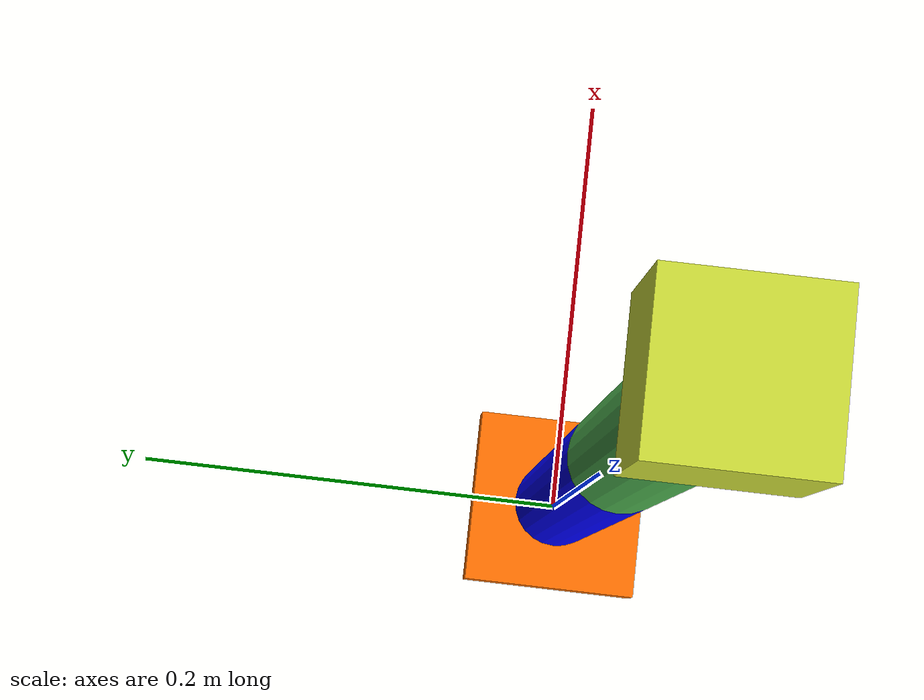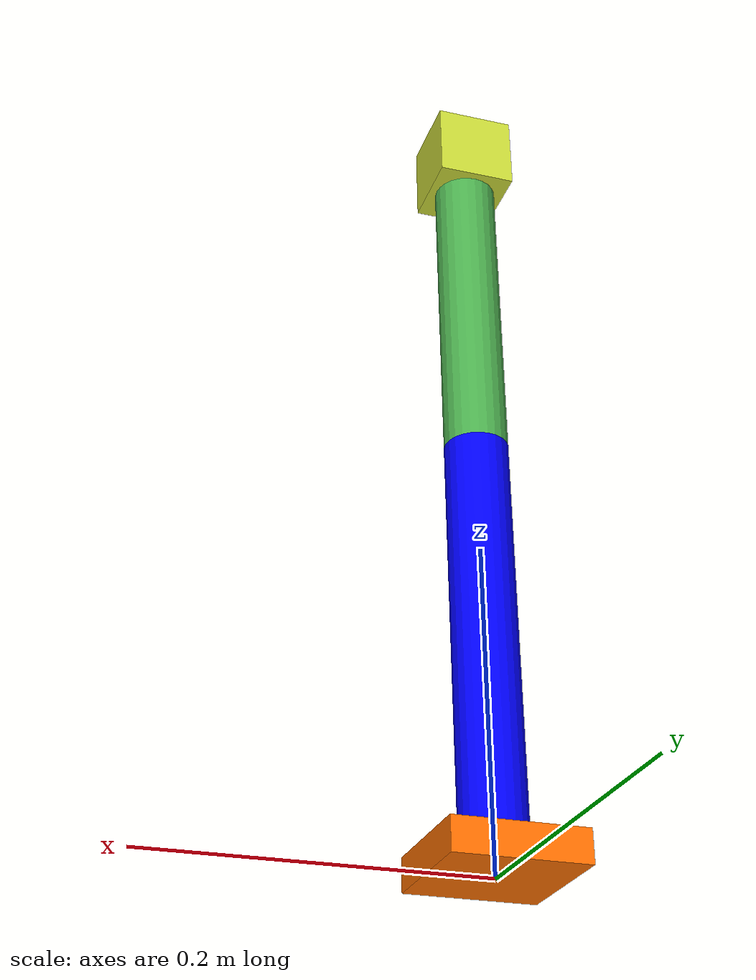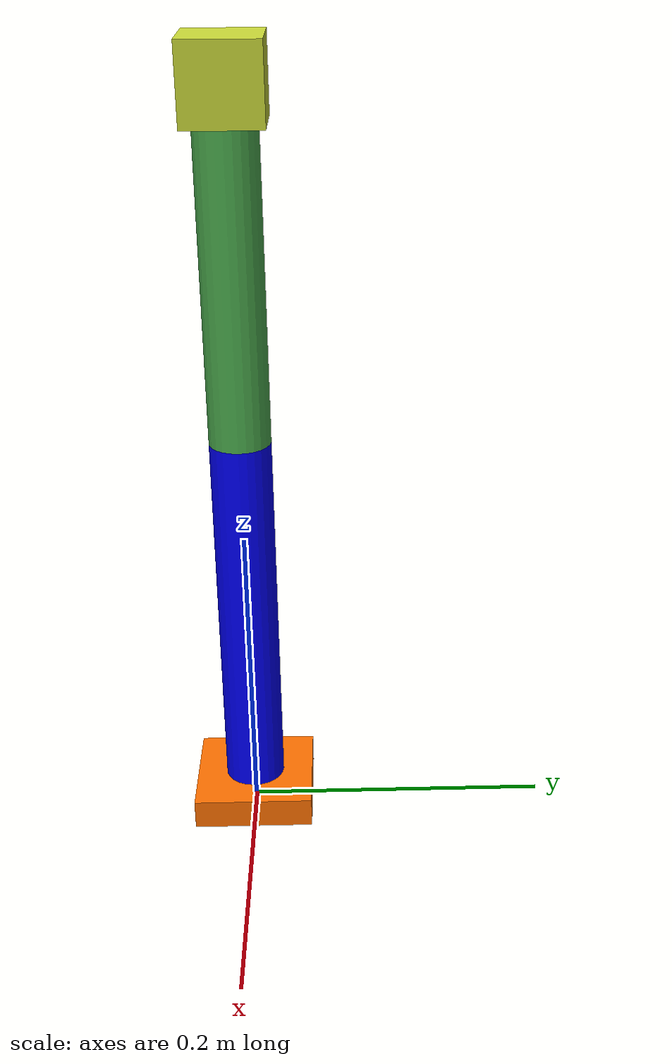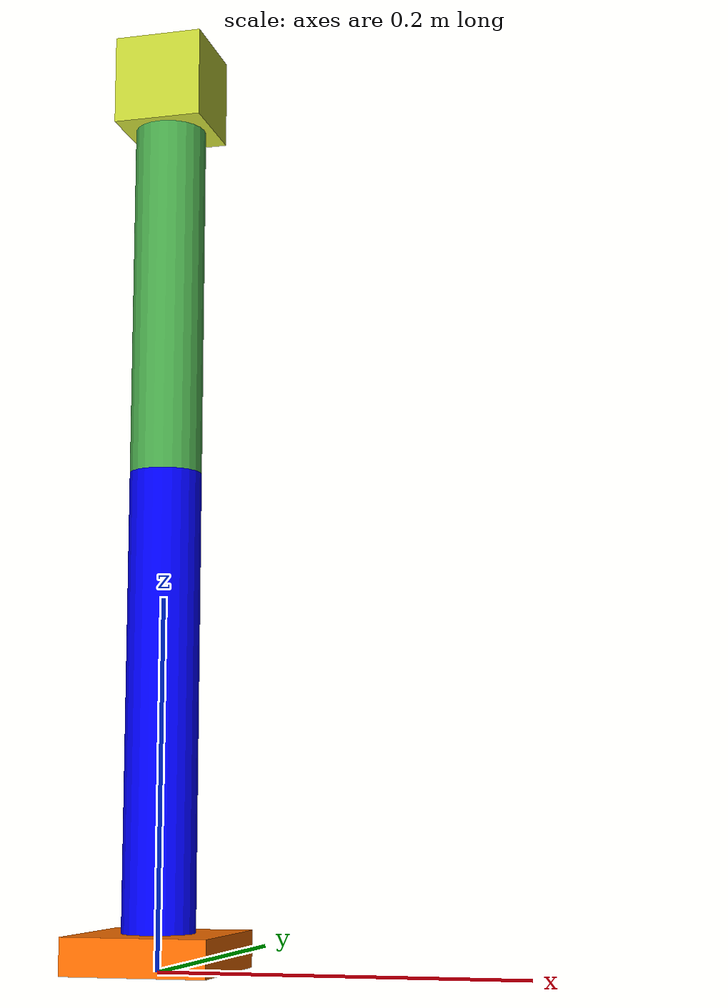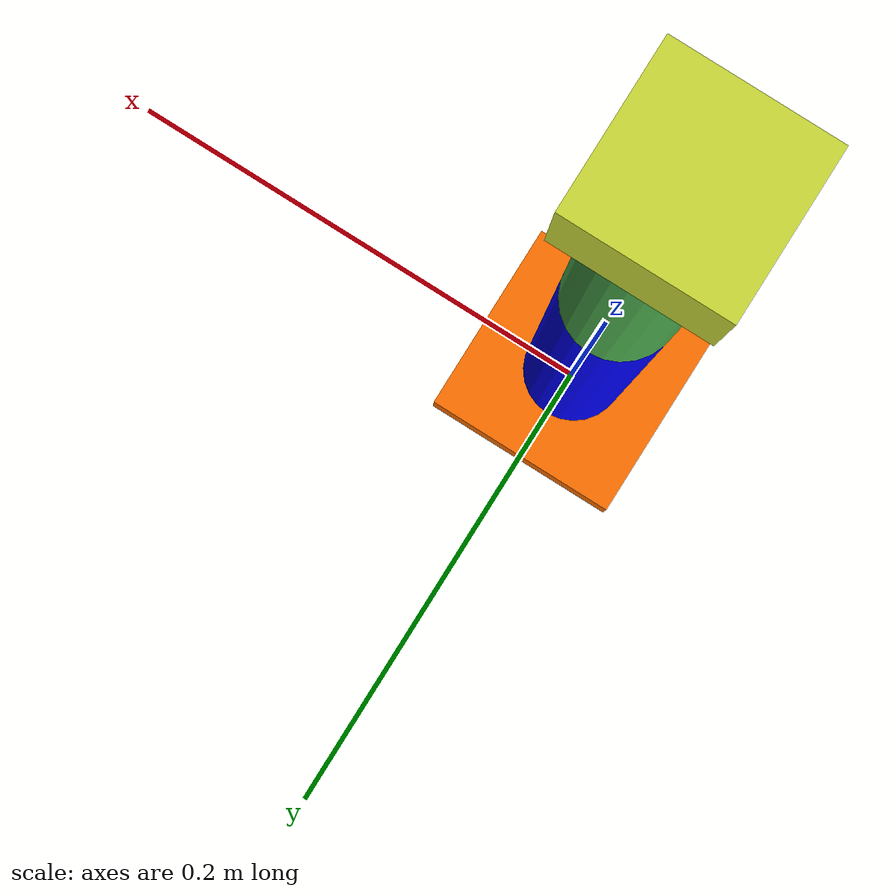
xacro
<?xml version="1.0"?>
<robot xmlns:xacro="http://www.ros.org/wiki/xacro">

  <!-- PROPERTIES -->
  <xacro:property name="arm_base_length" value="0.08"/>
  <xacro:property name="arm_base_width" value="0.08"/>
  <xacro:property name="arm_base_height" value="0.02"/>
  <xacro:property name="lower_arm_radius" value="0.02"/>
  <xacro:property name="lower_arm_length" value="0.25"/>
  <xacro:property name="upper_arm_radius" value="0.02"/>
  <xacro:property name="upper_arm_length" value="0.20"/>
  <xacro:property name="gripper_length" value="0.05"/>
  <xacro:property name="gripper_width" value="0.05"/>
  <xacro:property name="gripper_height" value="0.05"/>

  <!-- ARM BASE LINK -->
  <link name="arm_base_link">
    <visual>
      <geometry>
        <box size="${arm_base_length} ${arm_base_width} ${arm_base_height}"/>
      </geometry>
      <origin xyz="0 0 ${arm_base_height/2}" rpy="0 0 0"/>
      <material name="orange">
        <color rgba="1 0.44 0 1"/>
      </material>
    </visual>
    <collision>
      <geometry>
        <box size="${arm_base_length} ${arm_base_width} ${arm_base_height}"/>
      </geometry>
      <origin xyz="0 0 ${arm_base_height/2}" rpy="0 0 0"/>
    </collision>
    <xacro:inertial_box mass="0.5" x="${arm_base_length}" y="${arm_base_width}" z="${arm_base_height}"/>
  </link>

  <gazebo reference="arm_base_link">
    <material>Gazebo/Orange</material>
  </gazebo>

  <!-- LOWER_ARM LINK -->
  <link name="lower_arm_link">
    <visual>
      <geometry>
        <cylinder radius="${lower_arm_radius}" length="${lower_arm_length}"/>
      </geometry>
      <origin xyz="0 0 ${lower_arm_length/2}" rpy="0 0 0"/>
      <material name="blue">
        <color rgba="0 0 1 1"/>
      </material>
    </visual>
    <collision>
      <geometry>
        <cylinder radius="${lower_arm_radius}" length="${lower_arm_length}"/>
      </geometry>
      <origin xyz="0 0 ${lower_arm_length/2}" rpy="0 0 0"/>
    </collision>
    <xacro:inertial_cylinder mass="0.3" radius="${lower_arm_radius}" length="${lower_arm_length}"/>
  </link>

  <gazebo reference="lower_arm_link">
    <material>Gazebo/Blue</material>
  </gazebo>

  <!-- UPPER_ARM LINK -->
  <link name="upper_arm_link">
    <visual>
      <geometry>
        <cylinder radius="${upper_arm_radius}" length="${upper_arm_length}"/>
      </geometry>
      <origin xyz="0 0 ${upper_arm_length/2}" rpy="0 0 0"/>
      <material name="Green">
        <color rgba="0.3 0.69 0.31 1"/>
      </material>
    </visual>
    <collision>
      <geometry>
        <cylinder radius="${upper_arm_radius}" length="${upper_arm_length}"/>
      </geometry>
      <origin xyz="0 0 ${upper_arm_length/2}" rpy="0 0 0"/>
    </collision>
    <xacro:inertial_cylinder mass="0.3" radius="${upper_arm_radius}" length="${upper_arm_length}"/>
  </link>

  <gazebo reference="upper_arm_link">
    <material>Gazebo/Green</material>
  </gazebo>

  <!-- GRIIPER LINK -->
  <link name="gripper_link">
    <visual>
      <geometry>
        <box size="${gripper_length} ${gripper_width} ${gripper_height}"/>
      </geometry>
      <origin xyz="0 0 ${gripper_height/2}" rpy="0 0 0"/>
      <material name="Yellow">
        <color rgba="0.8 0.86 0.22 1"/>
      </material>
    </visual>
    <collision>
      <geometry>
        <box size="${gripper_length} ${gripper_width} ${gripper_height}"/>
      </geometry>
      <origin xyz="0 0 ${gripper_height/2}" rpy="0 0 0"/>
    </collision>
    <xacro:inertial_box mass="0.1" x="${gripper_length}" y="${gripper_width}" z="${gripper_height}"/>
  </link>

  <gazebo reference="gripper_link">
    <material>Gazebo/Yellow</material>
  </gazebo>

  <!-- ARM BASE → LOWERARM -->
  <joint name="arm_base_to_lower_arm" type="revolute">
    <parent link="arm_base_link"/>
    <child link="lower_arm_link"/>
    <origin xyz="0 0 ${arm_base_height}" rpy="0 0 0"/>
    <axis xyz="0 -1 0"/>
    <limit lower="0" upper="${pi/2}" effort="100" velocity="100"/>
    <dynamics friction="0.05" damping="0.1"/>
  </joint>

  <!-- LOWERARM → UPPERARM -->
  <joint name="lower_arm_to_upper_arm" type="revolute">
    <parent link="lower_arm_link"/>
    <child link="upper_arm_link"/>
    <origin xyz="0 0 ${lower_arm_length}" rpy="0 0 0"/>
    <axis xyz="0 -1 0"/>
    <limit lower="0" upper="${pi/2}" effort="100" velocity="100"/>
    <dynamics friction="0.05" damping="0.1"/>
  </joint>

   <!-- UPPERARM → GRIPPER -->
  <joint name="upper_arm_to_gripper" type="revolute">
    <parent link="upper_arm_link"/>
    <child link="gripper_link"/>
    <origin xyz="0 0 ${upper_arm_length}" rpy="0 0 0"/>
    <axis xyz="0 -1 0"/>
    <limit lower="0" upper="${pi/2}" effort="100" velocity="100"/>
    <dynamics friction="0.05" damping="0.1"/>
  </joint>

  <!-- JOINT STATE PUBLISHER (kol) -->
  <gazebo>
    <plugin filename="gz-sim-joint-state-publisher-system"
            name="gz::sim::systems::JointStatePublisher">
      <joint_name>arm_base_to_lower_arm</joint_name>
      <joint_name>lower_arm_to_upper_arm</joint_name>
      <joint_name>upper_arm_to_gripper</joint_name>
    </plugin>
  </gazebo>

  <!-- JOINT POSITION CONTROLLER 1: lower, p_gain 4.0 -->
  <gazebo>
    <plugin filename="gz-sim-joint-position-controller-system"
            name="gz::sim::systems::JointPositionController">
      <joint_name>arm_base_to_lower_arm</joint_name>
      <p_gain>4.0</p_gain>
    </plugin>
  </gazebo>

  <!-- JOINT POSITION CONTROLLER 2: upper, p_gain 3.0 -->
  <gazebo>
    <plugin filename="gz-sim-joint-position-controller-system"
            name="gz::sim::systems::JointPositionController">
      <joint_name>lower_arm_to_upper_arm</joint_name>
      <p_gain>3.0</p_gain>
    </plugin>
  </gazebo>

  <!-- JOINT POSITION CONTROLLER 3: gripper, p_gain 2.0 -->
  <gazebo>
    <plugin filename="gz-sim-joint-position-controller-system"
            name="gz::sim::systems::JointPositionController">
      <joint_name>upper_arm_to_gripper</joint_name>
      <p_gain>2.0</p_gain>
    </plugin>
  </gazebo>

</robot>
